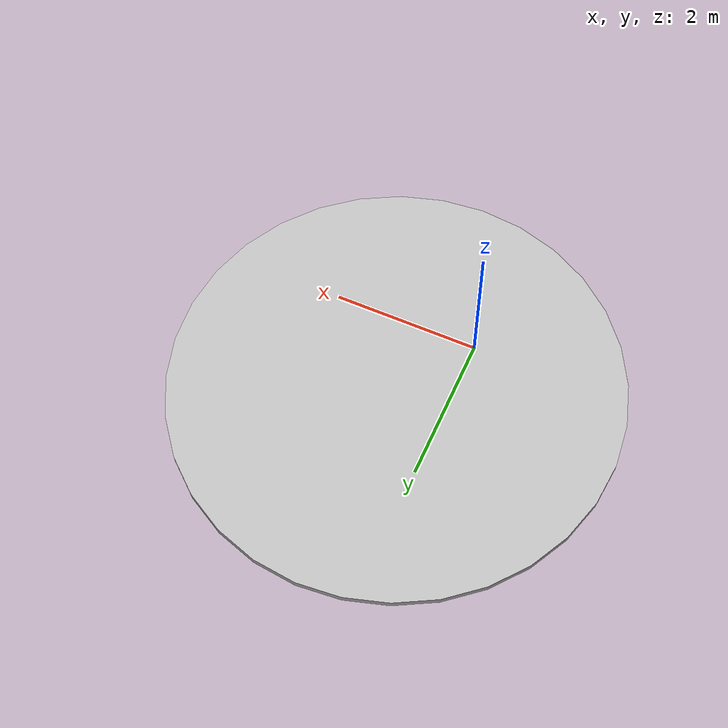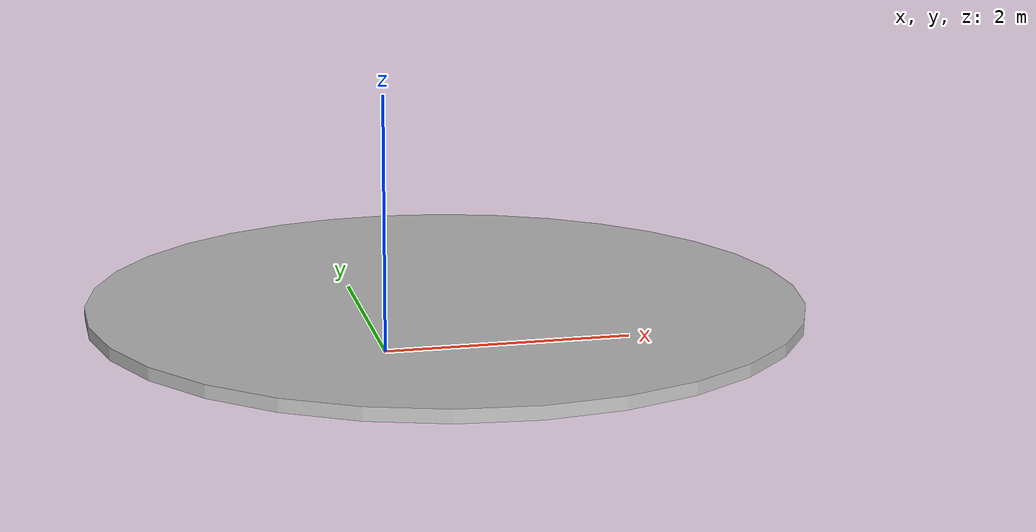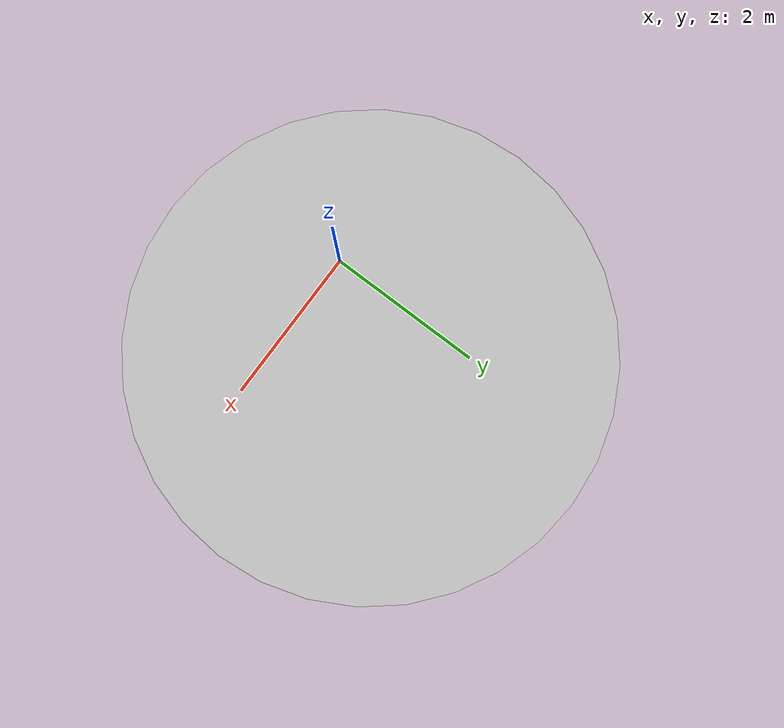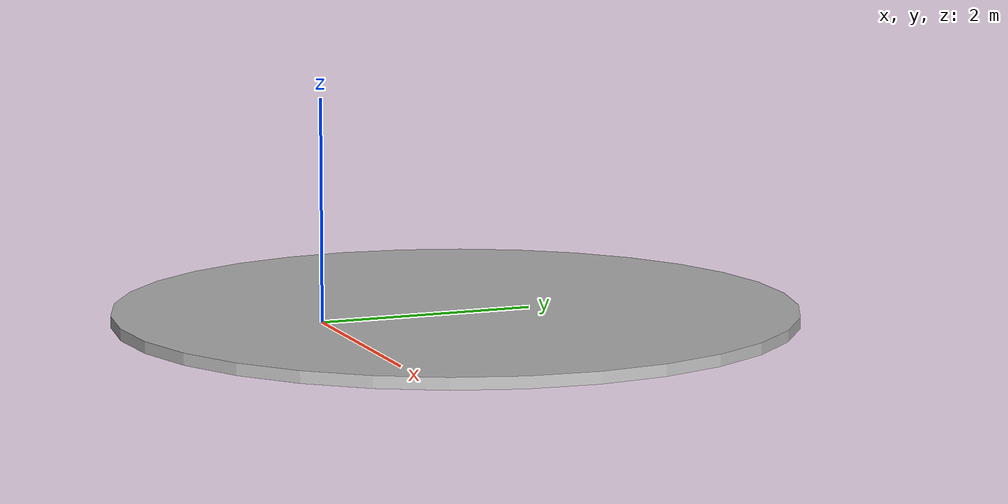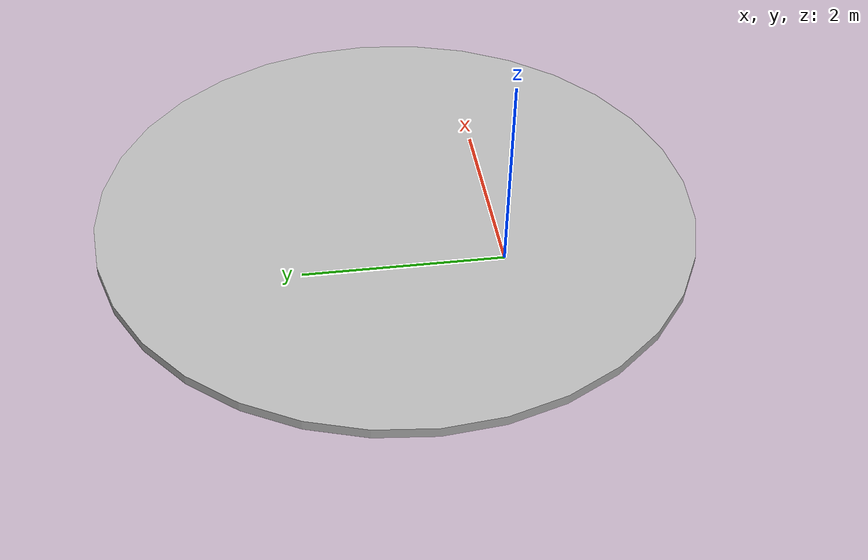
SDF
<?xml version="1.0" ?>
<sdf version="1.6">
  <model name="goal_marker">
    <pose>0 0 0 -1.57 0 0</pose>
    <static>true</static>
    <link name="link">
      <pose>0 0 0 0 0 0</pose>
      <collision name="wall1">
        <geometry>
          <mesh>
            <uri>model://goal_marker/marker1.obj</uri>
          </mesh>
        </geometry>
      </collision>
      <visual name="visual1">
        <geometry>
          <mesh>
            <uri>model://goal_marker/marker1.obj</uri>
          </mesh>
        </geometry>
      </visual>
    </link>

  </model>
</sdf>
